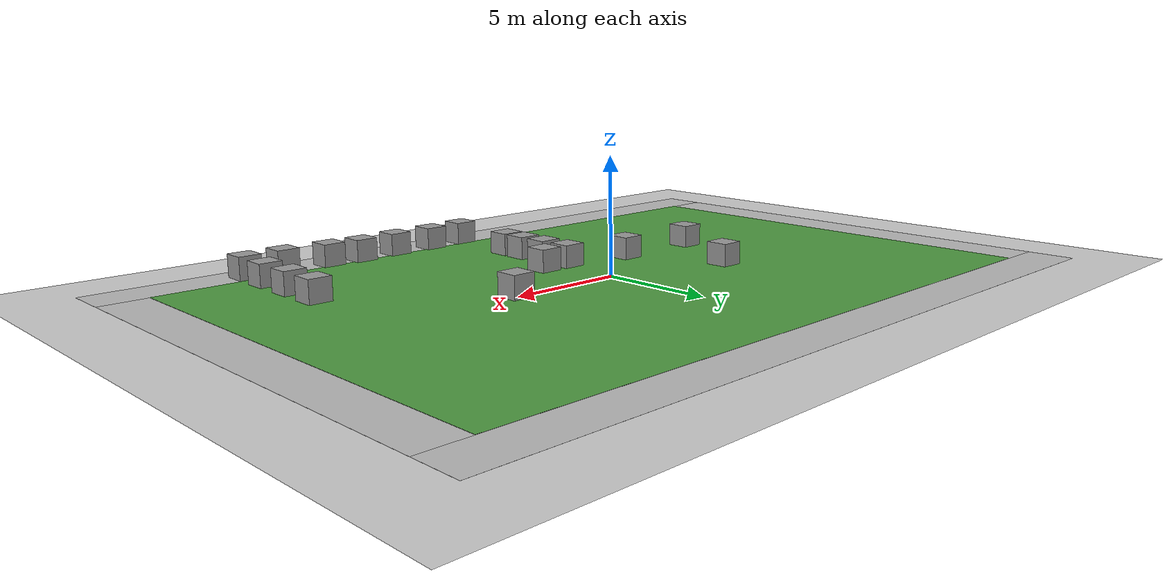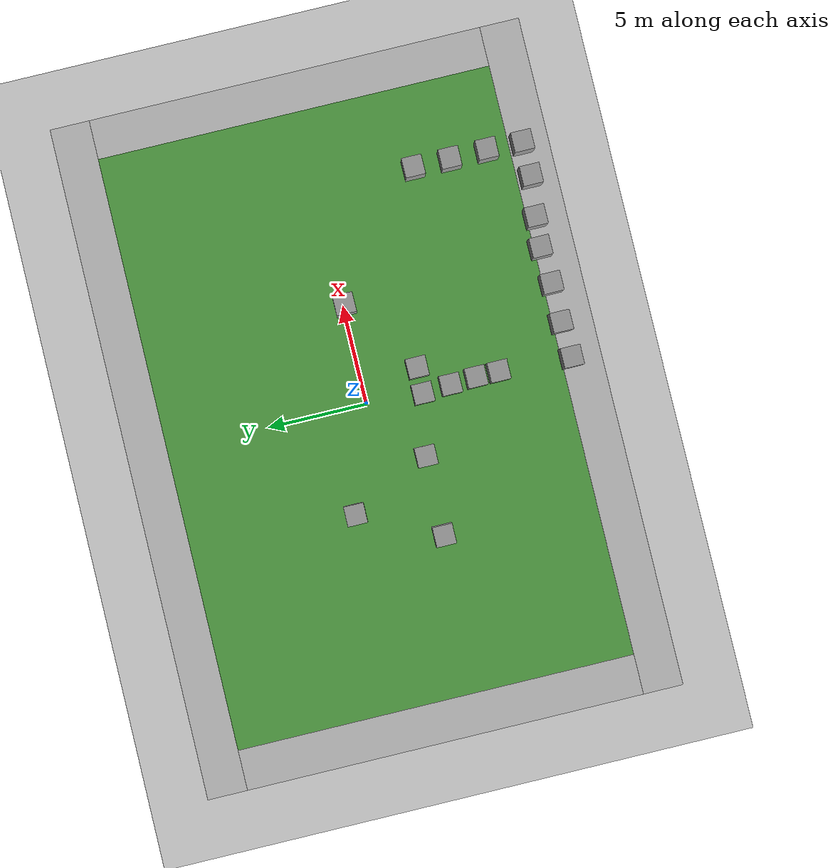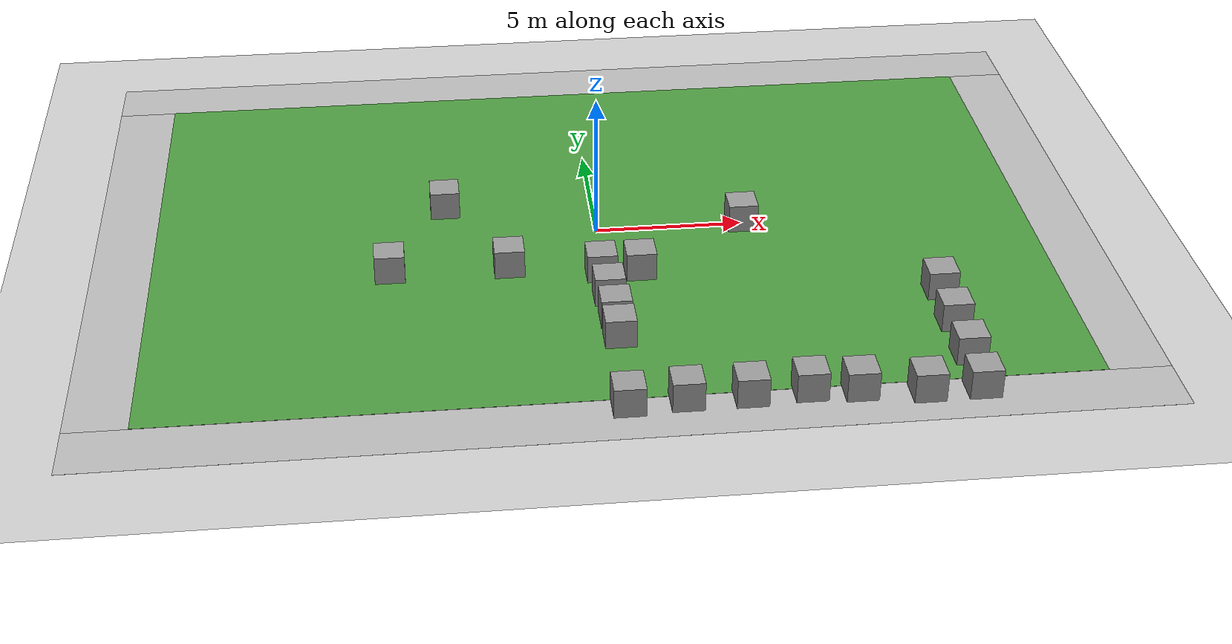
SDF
<sdf version="1.6">
 <world name="default">
  <plugin name="ardupilot_sitl_gazebo_plugin" filename="libardupilot_sitl_gazebo_plugin_rover.so">
   <UAV_MODEL>rover</UAV_MODEL>
  </plugin>
  <light name="sun" type="directional">
   <pose>0 0 10 0 -0 0</pose>
   <diffuse>0.8 0.8 0.8 1</diffuse>
   <specular>0.2 0.2 0.2 1</specular>
   <attenuation>
    <range>1000</range>
    <constant>0.9</constant>
    <linear>0.01</linear>
    <quadratic>0.001</quadratic>
   </attenuation>
   <direction>-0.5 0.1 -0.9</direction>
  </light>
  <model name="ground_plane">
   <static>1</static>
   <link name="link">
    <collision name="collision">
     <geometry><plane><normal>0 0 1</normal><size>100 100</size></plane></geometry>
     <surface><friction><ode><mu>100</mu><mu2>50</mu2></ode></friction></surface>
    </collision>
    <visual name="visual">
     <cast_shadows>0</cast_shadows>
     <geometry><plane><normal>0 0 1</normal><size>100 100</size></plane></geometry>
     <material>
      <script><uri>file://media/materials/scripts/gazebo.material</uri><name>Gazebo/Grey</name></script>
     </material>
    </visual>
   </link>
  </model>
  <gravity>0 0 -9.8</gravity>
  <magnetic_field>6e-06 2.3e-05 -4.2e-05</magnetic_field>
  <atmosphere type="adiabatic"/>
  <physics name="default_physics" default="0" type="ode">
   <max_step_size>0.001</max_step_size>
   <real_time_factor>1</real_time_factor>
   <real_time_update_rate>1000</real_time_update_rate>
  </physics>
  <scene><ambient>0.4 0.4 0.4 1</ambient><background>0.7 0.7 0.7 1</background><shadows>1</shadows></scene>
  <spherical_coordinates>
   <surface_model>EARTH_WGS84</surface_model>
   <latitude_deg>0</latitude_deg>
   <longitude_deg>0</longitude_deg>
   <elevation>0</elevation>
   <heading_deg>0</heading_deg>
  </spherical_coordinates>
  <model name="robocup_3d_field">
   <static>1</static>
   <link name="field">
    <pose>0 0 0.01 0 -0 0</pose>
    <collision name="collision">
     <geometry><plane><normal>0 0 1</normal><size>30 20</size></plane></geometry>
     <surface><friction><ode><mu>100</mu><mu2>50</mu2></ode></friction></surface>
    </collision>
    <visual name="base1">
     <pose>0 11 0.001 0 -0 0</pose>
     <cast_shadows>0</cast_shadows>
     <geometry><plane><normal>0 0 1</normal><size>34 2</size></plane></geometry>
     <material>
      <script>
       <uri>model://robocup_3Dsim_field/materials/scripts/</uri>
       <uri>model://robocup_3Dsim_field/materials/textures/</uri>
       <name>RoboCup/FieldBorder</name>
      </script>
     </material>
    </visual>
    <visual name="base2">
     <pose>0 -11 0.001 0 -0 0</pose>
     <cast_shadows>0</cast_shadows>
     <geometry><plane><normal>0 0 1</normal><size>34 2</size></plane></geometry>
     <material>
      <script>
       <uri>model://robocup_3Dsim_field/materials/scripts/</uri>
       <uri>model://robocup_3Dsim_field/materials/textures/</uri>
       <name>RoboCup/FieldBorder</name>
      </script>
     </material>
    </visual>
    <visual name="base3">
     <pose>16 0 0.001 0 -0 0</pose>
     <cast_shadows>0</cast_shadows>
     <geometry><plane><normal>0 0 1</normal><size>2 20</size></plane></geometry>
     <material>
      <script>
       <uri>model://robocup_3Dsim_field/materials/scripts/</uri>
       <uri>model://robocup_3Dsim_field/materials/textures/</uri>
       <name>RoboCup/FieldBorder</name>
      </script>
     </material>
    </visual>
    <visual name="base4">
     <pose>-16 0 0.001 0 -0 0</pose>
     <cast_shadows>0</cast_shadows>
     <geometry><plane><normal>0 0 1</normal><size>2 20</size></plane></geometry>
     <material>
      <script>
       <uri>model://robocup_3Dsim_field/materials/scripts/</uri>
       <uri>model://robocup_3Dsim_field/materials/textures/</uri>
       <name>RoboCup/FieldBorder</name>
      </script>
     </material>
    </visual>
    <visual name="carpet">
     <cast_shadows>0</cast_shadows>
     <geometry><plane><normal>0 0 1</normal><size>30 20</size></plane></geometry>
     <material>
      <script>
       <uri>model://robocup_3Dsim_field/materials/scripts/</uri>
       <uri>model://robocup_3Dsim_field/materials/textures/</uri>
       <name>RoboCup/Grass</name>
      </script>
     </material>
    </visual>
   </link>
   <pose>-0.031698 0.111229 0 0 -0 0</pose>
  </model>
  <model name="heavy_unit_box">
   <link name="link">
    <pose>0.094186 0.014985 0 0 -0 0</pose>
    <inertial>
     <mass>50</mass>
     <inertia>
      <ixx>0.166667</ixx>
      <ixy>0</ixy>
      <ixz>0</ixz>
      <iyy>0.166667</iyy>
      <iyz>0</iyz>
      <izz>0.166667</izz>
     </inertia>
    </inertial>
    <visual name="visual">
     <geometry><box><size>1 1 1</size></box></geometry>
     <material>
      <script><name>Gazebo/Grey</name><uri>file://media/materials/scripts/gazebo.material</uri></script>
      <ambient>0 0 0 1</ambient>
      <diffuse>0.7 0.7 0.7 1</diffuse>
      <specular>0.01 0.01 0.01 1</specular>
      <emissive>0 0 0 1</emissive>
      <shader type="vertex"><normal_map>__default__</normal_map></shader>
     </material>
    </visual>
    <collision name="collision">
     <geometry><box><size>1 1 1</size></box></geometry>
     <surface>
      <friction>
       <ode><mu>1</mu><mu2>1</mu2><fdir1>0 0 0</fdir1><slip1>0</slip1><slip2>0</slip2></ode>
       <torsional>
        <coefficient>1</coefficient>
        <patch_radius>0</patch_radius>
        <surface_radius>0</surface_radius>
        <use_patch_radius>1</use_patch_radius>
        <ode><slip>0</slip></ode>
       </torsional>
      </friction>
      <bounce><restitution_coefficient>0</restitution_coefficient><threshold>1e+06</threshold></bounce>
      <contact>
       <collide_without_contact>0</collide_without_contact>
       <collide_without_contact_bitmask>1</collide_without_contact_bitmask>
       <collide_bitmask>1</collide_bitmask>
       <ode>
        <soft_cfm>0</soft_cfm>
        <soft_erp>0.2</soft_erp>
        <kp>1e+13</kp>
        <kd>1</kd>
        <max_vel>0.01</max_vel>
        <min_depth>0</min_depth>
       </ode>
       <bullet>
        <split_impulse>1</split_impulse>
        <split_impulse_penetration_threshold>-0.01</split_impulse_penetration_threshold>
        <soft_cfm>0</soft_cfm>
        <soft_erp>0.2</soft_erp>
        <kp>1e+13</kp>
        <kd>1</kd>
       </bullet>
      </contact>
     </surface>
    </collision>
   </link>
   <static>0</static>
   <pose>4.91392 -0.111474 0.509995 4e-06 -1.2e-05 0.000169</pose>
  </model>
  <model name="heavy_unit_box_clone_13">
   <link name="link">
    <pose>0.094186 0.014985 0 0 -0 0</pose>
    <inertial>
     <mass>50</mass>
     <inertia>
      <ixx>0.166667</ixx>
      <ixy>0</ixy>
      <ixz>0</ixz>
      <iyy>0.166667</iyy>
      <iyz>0</iyz>
      <izz>0.166667</izz>
     </inertia>
    </inertial>
    <visual name="visual">
     <geometry><box><size>1 1 1</size></box></geometry>
     <material>
      <script><name>Gazebo/Grey</name><uri>file://media/materials/scripts/gazebo.material</uri></script>
      <ambient>0 0 0 1</ambient>
      <diffuse>0.7 0.7 0.7 1</diffuse>
      <specular>0.01 0.01 0.01 1</specular>
      <emissive>0 0 0 1</emissive>
      <shader type="vertex"><normal_map>__default__</normal_map></shader>
     </material>
    </visual>
    <collision name="collision">
     <geometry><box><size>1 1 1</size></box></geometry>
     <surface>
      <friction>
       <ode><mu>1</mu><mu2>1</mu2><fdir1>0 0 0</fdir1><slip1>0</slip1><slip2>0</slip2></ode>
       <torsional>
        <coefficient>1</coefficient>
        <patch_radius>0</patch_radius>
        <surface_radius>0</surface_radius>
        <use_patch_radius>1</use_patch_radius>
        <ode><slip>0</slip></ode>
       </torsional>
      </friction>
      <bounce><restitution_coefficient>0</restitution_coefficient><threshold>1e+06</threshold></bounce>
      <contact>
       <collide_without_contact>0</collide_without_contact>
       <collide_without_contact_bitmask>1</collide_without_contact_bitmask>
       <collide_bitmask>1</collide_bitmask>
       <ode>
        <soft_cfm>0</soft_cfm>
        <soft_erp>0.2</soft_erp>
        <kp>1e+13</kp>
        <kd>1</kd>
        <max_vel>0.01</max_vel>
        <min_depth>0</min_depth>
       </ode>
       <bullet>
        <split_impulse>1</split_impulse>
        <split_impulse_penetration_threshold>-0.01</split_impulse_penetration_threshold>
        <soft_cfm>0</soft_cfm>
        <soft_erp>0.2</soft_erp>
        <kp>1e+13</kp>
        <kd>1</kd>
       </bullet>
      </contact>
     </surface>
    </collision>
   </link>
   <static>0</static>
   <pose>1.06556 -2.84353 0.509995 4e-06 -1.2e-05 0.000169</pose>
  </model>
  <model name="heavy_unit_box_clone">
   <link name="link">
    <pose>0.094186 0.014985 0 0 -0 0</pose>
    <inertial>
     <mass>50</mass>
     <inertia>
      <ixx>0.166667</ixx>
      <ixy>0</ixy>
      <ixz>0</ixz>
      <iyy>0.166667</iyy>
      <iyz>0</iyz>
      <izz>0.166667</izz>
     </inertia>
    </inertial>
    <visual name="visual">
     <geometry><box><size>1 1 1</size></box></geometry>
     <material>
      <script><name>Gazebo/Grey</name><uri>file://media/materials/scripts/gazebo.material</uri></script>
      <ambient>0 0 0 1</ambient>
      <diffuse>0.7 0.7 0.7 1</diffuse>
      <specular>0.01 0.01 0.01 1</specular>
      <emissive>0 0 0 1</emissive>
      <shader type="vertex"><normal_map>__default__</normal_map></shader>
     </material>
    </visual>
    <collision name="collision">
     <geometry><box><size>1 1 1</size></box></geometry>
     <surface>
      <friction>
       <ode><mu>1</mu><mu2>1</mu2><fdir1>0 0 0</fdir1><slip1>0</slip1><slip2>0</slip2></ode>
       <torsional>
        <coefficient>1</coefficient>
        <patch_radius>0</patch_radius>
        <surface_radius>0</surface_radius>
        <use_patch_radius>1</use_patch_radius>
        <ode><slip>0</slip></ode>
       </torsional>
      </friction>
      <bounce><restitution_coefficient>0</restitution_coefficient><threshold>1e+06</threshold></bounce>
      <contact>
       <collide_without_contact>0</collide_without_contact>
       <collide_without_contact_bitmask>1</collide_without_contact_bitmask>
       <collide_bitmask>1</collide_bitmask>
       <ode>
        <soft_cfm>0</soft_cfm>
        <soft_erp>0.2</soft_erp>
        <kp>1e+13</kp>
        <kd>1</kd>
        <max_vel>0.01</max_vel>
        <min_depth>0</min_depth>
       </ode>
       <bullet>
        <split_impulse>1</split_impulse>
        <split_impulse_penetration_threshold>-0.01</split_impulse_penetration_threshold>
        <soft_cfm>0</soft_cfm>
        <soft_erp>0.2</soft_erp>
        <kp>1e+13</kp>
        <kd>1</kd>
       </bullet>
      </contact>
     </surface>
    </collision>
   </link>
   <static>0</static>
   <pose>-0.233036 -2.82226 0.509995 4e-06 -1.2e-05 0.000169</pose>
  </model>
  <model name="heavy_unit_box_clone_0">
   <link name="link">
    <pose>0.094186 0.014985 0 0 -0 0</pose>
    <inertial>
     <mass>50</mass>
     <inertia>
      <ixx>0.166667</ixx>
      <ixy>0</ixy>
      <ixz>0</ixz>
      <iyy>0.166667</iyy>
      <iyz>0</iyz>
      <izz>0.166667</izz>
     </inertia>
    </inertial>
    <visual name="visual">
     <geometry><box><size>1 1 1</size></box></geometry>
     <material>
      <script><name>Gazebo/Grey</name><uri>file://media/materials/scripts/gazebo.material</uri></script>
      <ambient>0 0 0 1</ambient>
      <diffuse>0.7 0.7 0.7 1</diffuse>
      <specular>0.01 0.01 0.01 1</specular>
      <emissive>0 0 0 1</emissive>
      <shader type="vertex"><normal_map>__default__</normal_map></shader>
     </material>
    </visual>
    <collision name="collision">
     <geometry><box><size>1 1 1</size></box></geometry>
     <surface>
      <friction>
       <ode><mu>1</mu><mu2>1</mu2><fdir1>0 0 0</fdir1><slip1>0</slip1><slip2>0</slip2></ode>
       <torsional>
        <coefficient>1</coefficient>
        <patch_radius>0</patch_radius>
        <surface_radius>0</surface_radius>
        <use_patch_radius>1</use_patch_radius>
        <ode><slip>0</slip></ode>
       </torsional>
      </friction>
      <bounce><restitution_coefficient>0</restitution_coefficient><threshold>1e+06</threshold></bounce>
      <contact>
       <collide_without_contact>0</collide_without_contact>
       <collide_without_contact_bitmask>1</collide_without_contact_bitmask>
       <collide_bitmask>1</collide_bitmask>
       <ode>
        <soft_cfm>0</soft_cfm>
        <soft_erp>0.2</soft_erp>
        <kp>1e+13</kp>
        <kd>1</kd>
        <max_vel>0.01</max_vel>
        <min_depth>0</min_depth>
       </ode>
       <bullet>
        <split_impulse>1</split_impulse>
        <split_impulse_penetration_threshold>-0.01</split_impulse_penetration_threshold>
        <soft_cfm>0</soft_cfm>
        <soft_erp>0.2</soft_erp>
        <kp>1e+13</kp>
        <kd>1</kd>
       </bullet>
      </contact>
     </surface>
    </collision>
   </link>
   <static>0</static>
   <pose>-0.126668 -4.23859 0.509995 4e-06 -1.2e-05 0.000169</pose>
  </model>
  <model name="heavy_unit_box_clone_1">
   <link name="link">
    <pose>0.094186 0.014985 0 0 -0 0</pose>
    <inertial>
     <mass>50</mass>
     <inertia>
      <ixx>0.166667</ixx>
      <ixy>0</ixy>
      <ixz>0</ixz>
      <iyy>0.166667</iyy>
      <iyz>0</iyz>
      <izz>0.166667</izz>
     </inertia>
    </inertial>
    <visual name="visual">
     <geometry><box><size>1 1 1</size></box></geometry>
     <material>
      <script><name>Gazebo/Grey</name><uri>file://media/materials/scripts/gazebo.material</uri></script>
      <ambient>0 0 0 1</ambient>
      <diffuse>0.7 0.7 0.7 1</diffuse>
      <specular>0.01 0.01 0.01 1</specular>
      <emissive>0 0 0 1</emissive>
      <shader type="vertex"><normal_map>__default__</normal_map></shader>
     </material>
    </visual>
    <collision name="collision">
     <geometry><box><size>1 1 1</size></box></geometry>
     <surface>
      <friction>
       <ode><mu>1</mu><mu2>1</mu2><fdir1>0 0 0</fdir1><slip1>0</slip1><slip2>0</slip2></ode>
       <torsional>
        <coefficient>1</coefficient>
        <patch_radius>0</patch_radius>
        <surface_radius>0</surface_radius>
        <use_patch_radius>1</use_patch_radius>
        <ode><slip>0</slip></ode>
       </torsional>
      </friction>
      <bounce><restitution_coefficient>0</restitution_coefficient><threshold>1e+06</threshold></bounce>
      <contact>
       <collide_without_contact>0</collide_without_contact>
       <collide_without_contact_bitmask>1</collide_without_contact_bitmask>
       <collide_bitmask>1</collide_bitmask>
       <ode>
        <soft_cfm>0</soft_cfm>
        <soft_erp>0.2</soft_erp>
        <kp>1e+13</kp>
        <kd>1</kd>
        <max_vel>0.01</max_vel>
        <min_depth>0</min_depth>
       </ode>
       <bullet>
        <split_impulse>1</split_impulse>
        <split_impulse_penetration_threshold>-0.01</split_impulse_penetration_threshold>
        <soft_cfm>0</soft_cfm>
        <soft_erp>0.2</soft_erp>
        <kp>1e+13</kp>
        <kd>1</kd>
       </bullet>
      </contact>
     </surface>
    </collision>
   </link>
   <static>0</static>
   <pose>-0.061368 -5.53773 0.509995 4e-06 -1.2e-05 0.000169</pose>
  </model>
  <model name="heavy_unit_box_clone_2">
   <link name="link">
    <pose>0.094186 0.014985 0 0 -0 0</pose>
    <inertial>
     <mass>50</mass>
     <inertia>
      <ixx>0.166667</ixx>
      <ixy>0</ixy>
      <ixz>0</ixz>
      <iyy>0.166667</iyy>
      <iyz>0</iyz>
      <izz>0.166667</izz>
     </inertia>
    </inertial>
    <visual name="visual">
     <geometry><box><size>1 1 1</size></box></geometry>
     <material>
      <script><name>Gazebo/Grey</name><uri>file://media/materials/scripts/gazebo.material</uri></script>
      <ambient>0 0 0 1</ambient>
      <diffuse>0.7 0.7 0.7 1</diffuse>
      <specular>0.01 0.01 0.01 1</specular>
      <emissive>0 0 0 1</emissive>
      <shader type="vertex"><normal_map>__default__</normal_map></shader>
     </material>
    </visual>
    <collision name="collision">
     <geometry><box><size>1 1 1</size></box></geometry>
     <surface>
      <friction>
       <ode><mu>1</mu><mu2>1</mu2><fdir1>0 0 0</fdir1><slip1>0</slip1><slip2>0</slip2></ode>
       <torsional>
        <coefficient>1</coefficient>
        <patch_radius>0</patch_radius>
        <surface_radius>0</surface_radius>
        <use_patch_radius>1</use_patch_radius>
        <ode><slip>0</slip></ode>
       </torsional>
      </friction>
      <bounce><restitution_coefficient>0</restitution_coefficient><threshold>1e+06</threshold></bounce>
      <contact>
       <collide_without_contact>0</collide_without_contact>
       <collide_without_contact_bitmask>1</collide_without_contact_bitmask>
       <collide_bitmask>1</collide_bitmask>
       <ode>
        <soft_cfm>0</soft_cfm>
        <soft_erp>0.2</soft_erp>
        <kp>1e+13</kp>
        <kd>1</kd>
        <max_vel>0.01</max_vel>
        <min_depth>0</min_depth>
       </ode>
       <bullet>
        <split_impulse>1</split_impulse>
        <split_impulse_penetration_threshold>-0.01</split_impulse_penetration_threshold>
        <soft_cfm>0</soft_cfm>
        <soft_erp>0.2</soft_erp>
        <kp>1e+13</kp>
        <kd>1</kd>
       </bullet>
      </contact>
     </surface>
    </collision>
   </link>
   <static>0</static>
   <pose>-0.05085 -6.68582 0.509995 4e-06 -1.2e-05 0.000169</pose>
  </model>
  <model name="heavy_unit_box_clone_3">
   <link name="link">
    <pose>0.094186 0.014985 0 0 -0 0</pose>
    <inertial>
     <mass>50</mass>
     <inertia>
      <ixx>0.166667</ixx>
      <ixy>0</ixy>
      <ixz>0</ixz>
      <iyy>0.166667</iyy>
      <iyz>0</iyz>
      <izz>0.166667</izz>
     </inertia>
    </inertial>
    <visual name="visual">
     <geometry><box><size>1 1 1</size></box></geometry>
     <material>
      <script><name>Gazebo/Grey</name><uri>file://media/materials/scripts/gazebo.material</uri></script>
      <ambient>0 0 0 1</ambient>
      <diffuse>0.7 0.7 0.7 1</diffuse>
      <specular>0.01 0.01 0.01 1</specular>
      <emissive>0 0 0 1</emissive>
      <shader type="vertex"><normal_map>__default__</normal_map></shader>
     </material>
    </visual>
    <collision name="collision">
     <geometry><box><size>1 1 1</size></box></geometry>
     <surface>
      <friction>
       <ode><mu>1</mu><mu2>1</mu2><fdir1>0 0 0</fdir1><slip1>0</slip1><slip2>0</slip2></ode>
       <torsional>
        <coefficient>1</coefficient>
        <patch_radius>0</patch_radius>
        <surface_radius>0</surface_radius>
        <use_patch_radius>1</use_patch_radius>
        <ode><slip>0</slip></ode>
       </torsional>
      </friction>
      <bounce><restitution_coefficient>0</restitution_coefficient><threshold>1e+06</threshold></bounce>
      <contact>
       <collide_without_contact>0</collide_without_contact>
       <collide_without_contact_bitmask>1</collide_without_contact_bitmask>
       <collide_bitmask>1</collide_bitmask>
       <ode>
        <soft_cfm>0</soft_cfm>
        <soft_erp>0.2</soft_erp>
        <kp>1e+13</kp>
        <kd>1</kd>
        <max_vel>0.01</max_vel>
        <min_depth>0</min_depth>
       </ode>
       <bullet>
        <split_impulse>1</split_impulse>
        <split_impulse_penetration_threshold>-0.01</split_impulse_penetration_threshold>
        <soft_cfm>0</soft_cfm>
        <soft_erp>0.2</soft_erp>
        <kp>1e+13</kp>
        <kd>1</kd>
       </bullet>
      </contact>
     </surface>
    </collision>
   </link>
   <static>0</static>
   <pose>-0.197615 -10.334 0.509995 4e-06 -1.2e-05 0.000169</pose>
  </model>
  <model name="heavy_unit_box_clone_4">
   <link name="link">
    <pose>0.094186 0.014985 0 0 -0 0</pose>
    <inertial>
     <mass>50</mass>
     <inertia>
      <ixx>0.166667</ixx>
      <ixy>0</ixy>
      <ixz>0</ixz>
      <iyy>0.166667</iyy>
      <iyz>0</iyz>
      <izz>0.166667</izz>
     </inertia>
    </inertial>
    <visual name="visual">
     <geometry><box><size>1 1 1</size></box></geometry>
     <material>
      <script><name>Gazebo/Grey</name><uri>file://media/materials/scripts/gazebo.material</uri></script>
      <ambient>0 0 0 1</ambient>
      <diffuse>0.7 0.7 0.7 1</diffuse>
      <specular>0.01 0.01 0.01 1</specular>
      <emissive>0 0 0 1</emissive>
      <shader type="vertex"><normal_map>__default__</normal_map></shader>
     </material>
    </visual>
    <collision name="collision">
     <geometry><box><size>1 1 1</size></box></geometry>
     <surface>
      <friction>
       <ode><mu>1</mu><mu2>1</mu2><fdir1>0 0 0</fdir1><slip1>0</slip1><slip2>0</slip2></ode>
       <torsional>
        <coefficient>1</coefficient>
        <patch_radius>0</patch_radius>
        <surface_radius>0</surface_radius>
        <use_patch_radius>1</use_patch_radius>
        <ode><slip>0</slip></ode>
       </torsional>
      </friction>
      <bounce><restitution_coefficient>0</restitution_coefficient><threshold>1e+06</threshold></bounce>
      <contact>
       <collide_without_contact>0</collide_without_contact>
       <collide_without_contact_bitmask>1</collide_without_contact_bitmask>
       <collide_bitmask>1</collide_bitmask>
       <ode>
        <soft_cfm>0</soft_cfm>
        <soft_erp>0.2</soft_erp>
        <kp>1e+13</kp>
        <kd>1</kd>
        <max_vel>0.01</max_vel>
        <min_depth>0</min_depth>
       </ode>
       <bullet>
        <split_impulse>1</split_impulse>
        <split_impulse_penetration_threshold>-0.01</split_impulse_penetration_threshold>
        <soft_cfm>0</soft_cfm>
        <soft_erp>0.2</soft_erp>
        <kp>1e+13</kp>
        <kd>1</kd>
       </bullet>
      </contact>
     </surface>
    </collision>
   </link>
   <static>0</static>
   <pose>1.59245 -10.2342 0.509995 4e-06 -1.2e-05 0.000169</pose>
  </model>
  <model name="heavy_unit_box_clone_5">
   <link name="link">
    <pose>0.094186 0.014985 0 0 -0 0</pose>
    <inertial>
     <mass>50</mass>
     <inertia>
      <ixx>0.166667</ixx>
      <ixy>0</ixy>
      <ixz>0</ixz>
      <iyy>0.166667</iyy>
      <iyz>0</iyz>
      <izz>0.166667</izz>
     </inertia>
    </inertial>
    <visual name="visual">
     <geometry><box><size>1 1 1</size></box></geometry>
     <material>
      <script><name>Gazebo/Grey</name><uri>file://media/materials/scripts/gazebo.material</uri></script>
      <ambient>0 0 0 1</ambient>
      <diffuse>0.7 0.7 0.7 1</diffuse>
      <specular>0.01 0.01 0.01 1</specular>
      <emissive>0 0 0 1</emissive>
      <shader type="vertex"><normal_map>__default__</normal_map></shader>
     </material>
    </visual>
    <collision name="collision">
     <geometry><box><size>1 1 1</size></box></geometry>
     <surface>
      <friction>
       <ode><mu>1</mu><mu2>1</mu2><fdir1>0 0 0</fdir1><slip1>0</slip1><slip2>0</slip2></ode>
       <torsional>
        <coefficient>1</coefficient>
        <patch_radius>0</patch_radius>
        <surface_radius>0</surface_radius>
        <use_patch_radius>1</use_patch_radius>
        <ode><slip>0</slip></ode>
       </torsional>
      </friction>
      <bounce><restitution_coefficient>0</restitution_coefficient><threshold>1e+06</threshold></bounce>
      <contact>
       <collide_without_contact>0</collide_without_contact>
       <collide_without_contact_bitmask>1</collide_without_contact_bitmask>
       <collide_bitmask>1</collide_bitmask>
       <ode>
        <soft_cfm>0</soft_cfm>
        <soft_erp>0.2</soft_erp>
        <kp>1e+13</kp>
        <kd>1</kd>
        <max_vel>0.01</max_vel>
        <min_depth>0</min_depth>
       </ode>
       <bullet>
        <split_impulse>1</split_impulse>
        <split_impulse_penetration_threshold>-0.01</split_impulse_penetration_threshold>
        <soft_cfm>0</soft_cfm>
        <soft_erp>0.2</soft_erp>
        <kp>1e+13</kp>
        <kd>1</kd>
       </bullet>
      </contact>
     </surface>
    </collision>
   </link>
   <static>0</static>
   <pose>3.5585 -10.2307 0.509995 4e-06 -1.2e-05 0.000169</pose>
  </model>
  <model name="heavy_unit_box_clone_6">
   <link name="link">
    <pose>0.094186 0.014985 0 0 -0 0</pose>
    <inertial>
     <mass>50</mass>
     <inertia>
      <ixx>0.166667</ixx>
      <ixy>0</ixy>
      <ixz>0</ixz>
      <iyy>0.166667</iyy>
      <iyz>0</iyz>
      <izz>0.166667</izz>
     </inertia>
    </inertial>
    <visual name="visual">
     <geometry><box><size>1 1 1</size></box></geometry>
     <material>
      <script><name>Gazebo/Grey</name><uri>file://media/materials/scripts/gazebo.material</uri></script>
      <ambient>0 0 0 1</ambient>
      <diffuse>0.7 0.7 0.7 1</diffuse>
      <specular>0.01 0.01 0.01 1</specular>
      <emissive>0 0 0 1</emissive>
      <shader type="vertex"><normal_map>__default__</normal_map></shader>
     </material>
    </visual>
    <collision name="collision">
     <geometry><box><size>1 1 1</size></box></geometry>
     <surface>
      <friction>
       <ode><mu>1</mu><mu2>1</mu2><fdir1>0 0 0</fdir1><slip1>0</slip1><slip2>0</slip2></ode>
       <torsional>
        <coefficient>1</coefficient>
        <patch_radius>0</patch_radius>
        <surface_radius>0</surface_radius>
        <use_patch_radius>1</use_patch_radius>
        <ode><slip>0</slip></ode>
       </torsional>
      </friction>
      <bounce><restitution_coefficient>0</restitution_coefficient><threshold>1e+06</threshold></bounce>
      <contact>
       <collide_without_contact>0</collide_without_contact>
       <collide_without_contact_bitmask>1</collide_without_contact_bitmask>
       <collide_bitmask>1</collide_bitmask>
       <ode>
        <soft_cfm>0</soft_cfm>
        <soft_erp>0.2</soft_erp>
        <kp>1e+13</kp>
        <kd>1</kd>
        <max_vel>0.01</max_vel>
        <min_depth>0</min_depth>
       </ode>
       <bullet>
        <split_impulse>1</split_impulse>
        <split_impulse_penetration_threshold>-0.01</split_impulse_penetration_threshold>
        <soft_cfm>0</soft_cfm>
        <soft_erp>0.2</soft_erp>
        <kp>1e+13</kp>
        <kd>1</kd>
       </bullet>
      </contact>
     </surface>
    </collision>
   </link>
   <static>0</static>
   <pose>5.40411 -10.1289 0.509995 4e-06 -1.2e-05 0.000169</pose>
  </model>
  <model name="heavy_unit_box_clone_7">
   <link name="link">
    <pose>0.094186 0.014985 0 0 -0 0</pose>
    <inertial>
     <mass>50</mass>
     <inertia>
      <ixx>0.166667</ixx>
      <ixy>0</ixy>
      <ixz>0</ixz>
      <iyy>0.166667</iyy>
      <iyz>0</iyz>
      <izz>0.166667</izz>
     </inertia>
    </inertial>
    <visual name="visual">
     <geometry><box><size>1 1 1</size></box></geometry>
     <material>
      <script><name>Gazebo/Grey</name><uri>file://media/materials/scripts/gazebo.material</uri></script>
      <ambient>0 0 0 1</ambient>
      <diffuse>0.7 0.7 0.7 1</diffuse>
      <specular>0.01 0.01 0.01 1</specular>
      <emissive>0 0 0 1</emissive>
      <shader type="vertex"><normal_map>__default__</normal_map></shader>
     </material>
    </visual>
    <collision name="collision">
     <geometry><box><size>1 1 1</size></box></geometry>
     <surface>
      <friction>
       <ode><mu>1</mu><mu2>1</mu2><fdir1>0 0 0</fdir1><slip1>0</slip1><slip2>0</slip2></ode>
       <torsional>
        <coefficient>1</coefficient>
        <patch_radius>0</patch_radius>
        <surface_radius>0</surface_radius>
        <use_patch_radius>1</use_patch_radius>
        <ode><slip>0</slip></ode>
       </torsional>
      </friction>
      <bounce><restitution_coefficient>0</restitution_coefficient><threshold>1e+06</threshold></bounce>
      <contact>
       <collide_without_contact>0</collide_without_contact>
       <collide_without_contact_bitmask>1</collide_without_contact_bitmask>
       <collide_bitmask>1</collide_bitmask>
       <ode>
        <soft_cfm>0</soft_cfm>
        <soft_erp>0.2</soft_erp>
        <kp>1e+13</kp>
        <kd>1</kd>
        <max_vel>0.01</max_vel>
        <min_depth>0</min_depth>
       </ode>
       <bullet>
        <split_impulse>1</split_impulse>
        <split_impulse_penetration_threshold>-0.01</split_impulse_penetration_threshold>
        <soft_cfm>0</soft_cfm>
        <soft_erp>0.2</soft_erp>
        <kp>1e+13</kp>
        <kd>1</kd>
       </bullet>
      </contact>
     </surface>
    </collision>
   </link>
   <static>0</static>
   <pose>6.9273 -10.2551 0.509995 4e-06 -1.2e-05 0.000169</pose>
  </model>
  <model name="heavy_unit_box_clone_8">
   <link name="link">
    <pose>0.094186 0.014985 0 0 -0 0</pose>
    <inertial>
     <mass>50</mass>
     <inertia>
      <ixx>0.166667</ixx>
      <ixy>0</ixy>
      <ixz>0</ixz>
      <iyy>0.166667</iyy>
      <iyz>0</iyz>
      <izz>0.166667</izz>
     </inertia>
    </inertial>
    <visual name="visual">
     <geometry><box><size>1 1 1</size></box></geometry>
     <material>
      <script><name>Gazebo/Grey</name><uri>file://media/materials/scripts/gazebo.material</uri></script>
      <ambient>0 0 0 1</ambient>
      <diffuse>0.7 0.7 0.7 1</diffuse>
      <specular>0.01 0.01 0.01 1</specular>
      <emissive>0 0 0 1</emissive>
      <shader type="vertex"><normal_map>__default__</normal_map></shader>
     </material>
    </visual>
    <collision name="collision">
     <geometry><box><size>1 1 1</size></box></geometry>
     <surface>
      <friction>
       <ode><mu>1</mu><mu2>1</mu2><fdir1>0 0 0</fdir1><slip1>0</slip1><slip2>0</slip2></ode>
       <torsional>
        <coefficient>1</coefficient>
        <patch_radius>0</patch_radius>
        <surface_radius>0</surface_radius>
        <use_patch_radius>1</use_patch_radius>
        <ode><slip>0</slip></ode>
       </torsional>
      </friction>
      <bounce><restitution_coefficient>0</restitution_coefficient><threshold>1e+06</threshold></bounce>
      <contact>
       <collide_without_contact>0</collide_without_contact>
       <collide_without_contact_bitmask>1</collide_without_contact_bitmask>
       <collide_bitmask>1</collide_bitmask>
       <ode>
        <soft_cfm>0</soft_cfm>
        <soft_erp>0.2</soft_erp>
        <kp>1e+13</kp>
        <kd>1</kd>
        <max_vel>0.01</max_vel>
        <min_depth>0</min_depth>
       </ode>
       <bullet>
        <split_impulse>1</split_impulse>
        <split_impulse_penetration_threshold>-0.01</split_impulse_penetration_threshold>
        <soft_cfm>0</soft_cfm>
        <soft_erp>0.2</soft_erp>
        <kp>1e+13</kp>
        <kd>1</kd>
       </bullet>
      </contact>
     </surface>
    </collision>
   </link>
   <static>0</static>
   <pose>8.95444 -10.5164 0.509995 4e-06 -1.2e-05 0.000169</pose>
  </model>
  <model name="heavy_unit_box_clone_9">
   <link name="link">
    <pose>0.094186 0.014985 0 0 -0 0</pose>
    <inertial>
     <mass>50</mass>
     <inertia>
      <ixx>0.166667</ixx>
      <ixy>0</ixy>
      <ixz>0</ixz>
      <iyy>0.166667</iyy>
      <iyz>0</iyz>
      <izz>0.166667</izz>
     </inertia>
    </inertial>
    <visual name="visual">
     <geometry><box><size>1 1 1</size></box></geometry>
     <material>
      <script><name>Gazebo/Grey</name><uri>file://media/materials/scripts/gazebo.material</uri></script>
      <ambient>0 0 0 1</ambient>
      <diffuse>0.7 0.7 0.7 1</diffuse>
      <specular>0.01 0.01 0.01 1</specular>
      <emissive>0 0 0 1</emissive>
      <shader type="vertex"><normal_map>__default__</normal_map></shader>
     </material>
    </visual>
    <collision name="collision">
     <geometry><box><size>1 1 1</size></box></geometry>
     <surface>
      <friction>
       <ode><mu>1</mu><mu2>1</mu2><fdir1>0 0 0</fdir1><slip1>0</slip1><slip2>0</slip2></ode>
       <torsional>
        <coefficient>1</coefficient>
        <patch_radius>0</patch_radius>
        <surface_radius>0</surface_radius>
        <use_patch_radius>1</use_patch_radius>
        <ode><slip>0</slip></ode>
       </torsional>
      </friction>
      <bounce><restitution_coefficient>0</restitution_coefficient><threshold>1e+06</threshold></bounce>
      <contact>
       <collide_without_contact>0</collide_without_contact>
       <collide_without_contact_bitmask>1</collide_without_contact_bitmask>
       <collide_bitmask>1</collide_bitmask>
       <ode>
        <soft_cfm>0</soft_cfm>
        <soft_erp>0.2</soft_erp>
        <kp>1e+13</kp>
        <kd>1</kd>
        <max_vel>0.01</max_vel>
        <min_depth>0</min_depth>
       </ode>
       <bullet>
        <split_impulse>1</split_impulse>
        <split_impulse_penetration_threshold>-0.01</split_impulse_penetration_threshold>
        <soft_cfm>0</soft_cfm>
        <soft_erp>0.2</soft_erp>
        <kp>1e+13</kp>
        <kd>1</kd>
       </bullet>
      </contact>
     </surface>
    </collision>
   </link>
   <static>0</static>
   <pose>10.6757 -10.5014 0.509995 4e-06 -1.2e-05 0.000169</pose>
  </model>
  <model name="heavy_unit_box_clone_10">
   <link name="link">
    <pose>0.094186 0.014985 0 0 -0 0</pose>
    <inertial>
     <mass>50</mass>
     <inertia>
      <ixx>0.166667</ixx>
      <ixy>0</ixy>
      <ixz>0</ixz>
      <iyy>0.166667</iyy>
      <iyz>0</iyz>
      <izz>0.166667</izz>
     </inertia>
    </inertial>
    <visual name="visual">
     <geometry><box><size>1 1 1</size></box></geometry>
     <material>
      <script><name>Gazebo/Grey</name><uri>file://media/materials/scripts/gazebo.material</uri></script>
      <ambient>0 0 0 1</ambient>
      <diffuse>0.7 0.7 0.7 1</diffuse>
      <specular>0.01 0.01 0.01 1</specular>
      <emissive>0 0 0 1</emissive>
      <shader type="vertex"><normal_map>__default__</normal_map></shader>
     </material>
    </visual>
    <collision name="collision">
     <geometry><box><size>1 1 1</size></box></geometry>
     <surface>
      <friction>
       <ode><mu>1</mu><mu2>1</mu2><fdir1>0 0 0</fdir1><slip1>0</slip1><slip2>0</slip2></ode>
       <torsional>
        <coefficient>1</coefficient>
        <patch_radius>0</patch_radius>
        <surface_radius>0</surface_radius>
        <use_patch_radius>1</use_patch_radius>
        <ode><slip>0</slip></ode>
       </torsional>
      </friction>
      <bounce><restitution_coefficient>0</restitution_coefficient><threshold>1e+06</threshold></bounce>
      <contact>
       <collide_without_contact>0</collide_without_contact>
       <collide_without_contact_bitmask>1</collide_without_contact_bitmask>
       <collide_bitmask>1</collide_bitmask>
       <ode>
        <soft_cfm>0</soft_cfm>
        <soft_erp>0.2</soft_erp>
        <kp>1e+13</kp>
        <kd>1</kd>
        <max_vel>0.01</max_vel>
        <min_depth>0</min_depth>
       </ode>
       <bullet>
        <split_impulse>1</split_impulse>
        <split_impulse_penetration_threshold>-0.01</split_impulse_penetration_threshold>
        <soft_cfm>0</soft_cfm>
        <soft_erp>0.2</soft_erp>
        <kp>1e+13</kp>
        <kd>1</kd>
       </bullet>
      </contact>
     </surface>
    </collision>
   </link>
   <static>0</static>
   <pose>10.7146 -8.70467 0.509995 4e-06 -1.2e-05 0.000169</pose>
  </model>
  <model name="heavy_unit_box_clone_11">
   <link name="link">
    <pose>0.094186 0.014985 0 0 -0 0</pose>
    <inertial>
     <mass>50</mass>
     <inertia>
      <ixx>0.166667</ixx>
      <ixy>0</ixy>
      <ixz>0</ixz>
      <iyy>0.166667</iyy>
      <iyz>0</iyz>
      <izz>0.166667</izz>
     </inertia>
    </inertial>
    <visual name="visual">
     <geometry><box><size>1 1 1</size></box></geometry>
     <material>
      <script><name>Gazebo/Grey</name><uri>file://media/materials/scripts/gazebo.material</uri></script>
      <ambient>0 0 0 1</ambient>
      <diffuse>0.7 0.7 0.7 1</diffuse>
      <specular>0.01 0.01 0.01 1</specular>
      <emissive>0 0 0 1</emissive>
      <shader type="vertex"><normal_map>__default__</normal_map></shader>
     </material>
    </visual>
    <collision name="collision">
     <geometry><box><size>1 1 1</size></box></geometry>
     <surface>
      <friction>
       <ode><mu>1</mu><mu2>1</mu2><fdir1>0 0 0</fdir1><slip1>0</slip1><slip2>0</slip2></ode>
       <torsional>
        <coefficient>1</coefficient>
        <patch_radius>0</patch_radius>
        <surface_radius>0</surface_radius>
        <use_patch_radius>1</use_patch_radius>
        <ode><slip>0</slip></ode>
       </torsional>
      </friction>
      <bounce><restitution_coefficient>0</restitution_coefficient><threshold>1e+06</threshold></bounce>
      <contact>
       <collide_without_contact>0</collide_without_contact>
       <collide_without_contact_bitmask>1</collide_without_contact_bitmask>
       <collide_bitmask>1</collide_bitmask>
       <ode>
        <soft_cfm>0</soft_cfm>
        <soft_erp>0.2</soft_erp>
        <kp>1e+13</kp>
        <kd>1</kd>
        <max_vel>0.01</max_vel>
        <min_depth>0</min_depth>
       </ode>
       <bullet>
        <split_impulse>1</split_impulse>
        <split_impulse_penetration_threshold>-0.01</split_impulse_penetration_threshold>
        <soft_cfm>0</soft_cfm>
        <soft_erp>0.2</soft_erp>
        <kp>1e+13</kp>
        <kd>1</kd>
       </bullet>
      </contact>
     </surface>
    </collision>
   </link>
   <static>0</static>
   <pose>10.7019 -6.83196 0.509995 4e-06 -1.2e-05 0.000169</pose>
  </model>
  <model name="heavy_unit_box_clone_12">
   <link name="link">
    <pose>0.094186 0.014985 0 0 -0 0</pose>
    <inertial>
     <mass>50</mass>
     <inertia>
      <ixx>0.166667</ixx>
      <ixy>0</ixy>
      <ixz>0</ixz>
      <iyy>0.166667</iyy>
      <iyz>0</iyz>
      <izz>0.166667</izz>
     </inertia>
    </inertial>
    <visual name="visual">
     <geometry><box><size>1 1 1</size></box></geometry>
     <material>
      <script><name>Gazebo/Grey</name><uri>file://media/materials/scripts/gazebo.material</uri></script>
      <ambient>0 0 0 1</ambient>
      <diffuse>0.7 0.7 0.7 1</diffuse>
      <specular>0.01 0.01 0.01 1</specular>
      <emissive>0 0 0 1</emissive>
      <shader type="vertex"><normal_map>__default__</normal_map></shader>
     </material>
    </visual>
    <collision name="collision">
     <geometry><box><size>1 1 1</size></box></geometry>
     <surface>
      <friction>
       <ode><mu>1</mu><mu2>1</mu2><fdir1>0 0 0</fdir1><slip1>0</slip1><slip2>0</slip2></ode>
       <torsional>
        <coefficient>1</coefficient>
        <patch_radius>0</patch_radius>
        <surface_radius>0</surface_radius>
        <use_patch_radius>1</use_patch_radius>
        <ode><slip>0</slip></ode>
       </torsional>
      </friction>
      <bounce><restitution_coefficient>0</restitution_coefficient><threshold>1e+06</threshold></bounce>
      <contact>
       <collide_without_contact>0</collide_without_contact>
       <collide_without_contact_bitmask>1</collide_without_contact_bitmask>
       <collide_bitmask>1</collide_bitmask>
       <ode>
        <soft_cfm>0</soft_cfm>
        <soft_erp>0.2</soft_erp>
        <kp>1e+13</kp>
        <kd>1</kd>
        <max_vel>0.01</max_vel>
        <min_depth>0</min_depth>
       </ode>
       <bullet>
        <split_impulse>1</split_impulse>
        <split_impulse_penetration_threshold>-0.01</split_impulse_penetration_threshold>
        <soft_cfm>0</soft_cfm>
        <soft_erp>0.2</soft_erp>
        <kp>1e+13</kp>
        <kd>1</kd>
       </bullet>
      </contact>
     </surface>
    </collision>
   </link>
   <static>0</static>
   <pose>10.7093 -4.98817 0.509995 4e-06 -1.2e-05 0.000169</pose>
  </model>
  <model name="heavy_unit_box_clone_14">
   <link name="link">
    <pose>0.094186 0.014985 0 0 -0 0</pose>
    <inertial>
     <mass>50</mass>
     <inertia>
      <ixx>0.166667</ixx>
      <ixy>0</ixy>
      <ixz>0</ixz>
      <iyy>0.166667</iyy>
      <iyz>0</iyz>
      <izz>0.166667</izz>
     </inertia>
    </inertial>
    <visual name="visual">
     <geometry><box><size>1 1 1</size></box></geometry>
     <material>
      <script><name>Gazebo/Grey</name><uri>file://media/materials/scripts/gazebo.material</uri></script>
      <ambient>0 0 0 1</ambient>
      <diffuse>0.7 0.7 0.7 1</diffuse>
      <specular>0.01 0.01 0.01 1</specular>
      <emissive>0 0 0 1</emissive>
      <shader type="vertex"><normal_map>__default__</normal_map></shader>
     </material>
    </visual>
    <collision name="collision">
     <geometry><box><size>1 1 1</size></box></geometry>
     <surface>
      <friction>
       <ode><mu>1</mu><mu2>1</mu2><fdir1>0 0 0</fdir1><slip1>0</slip1><slip2>0</slip2></ode>
       <torsional>
        <coefficient>1</coefficient>
        <patch_radius>0</patch_radius>
        <surface_radius>0</surface_radius>
        <use_patch_radius>1</use_patch_radius>
        <ode><slip>0</slip></ode>
       </torsional>
      </friction>
      <bounce><restitution_coefficient>0</restitution_coefficient><threshold>1e+06</threshold></bounce>
      <contact>
       <collide_without_contact>0</collide_without_contact>
       <collide_without_contact_bitmask>1</collide_without_contact_bitmask>
       <collide_bitmask>1</collide_bitmask>
       <ode>
        <soft_cfm>0</soft_cfm>
        <soft_erp>0.2</soft_erp>
        <kp>1e+13</kp>
        <kd>1</kd>
        <max_vel>0.01</max_vel>
        <min_depth>0</min_depth>
       </ode>
       <bullet>
        <split_impulse>1</split_impulse>
        <split_impulse_penetration_threshold>-0.01</split_impulse_penetration_threshold>
        <soft_cfm>0</soft_cfm>
        <soft_erp>0.2</soft_erp>
        <kp>1e+13</kp>
        <kd>1</kd>
       </bullet>
      </contact>
     </surface>
    </collision>
   </link>
   <static>0</static>
   <pose>-3.25936 -2.24903 0.509995 4e-06 -1.2e-05 0.000169</pose>
  </model>
  <model name="heavy_unit_box_clone_15">
   <link name="link">
    <pose>0.094186 0.014985 0 0 -0 0</pose>
    <inertial>
     <mass>50</mass>
     <inertia>
      <ixx>0.166667</ixx>
      <ixy>0</ixy>
      <ixz>0</ixz>
      <iyy>0.166667</iyy>
      <iyz>0</iyz>
      <izz>0.166667</izz>
     </inertia>
    </inertial>
    <visual name="visual">
     <geometry><box><size>1 1 1</size></box></geometry>
     <material>
      <script><name>Gazebo/Grey</name><uri>file://media/materials/scripts/gazebo.material</uri></script>
      <ambient>0 0 0 1</ambient>
      <diffuse>0.7 0.7 0.7 1</diffuse>
      <specular>0.01 0.01 0.01 1</specular>
      <emissive>0 0 0 1</emissive>
      <shader type="vertex"><normal_map>__default__</normal_map></shader>
     </material>
    </visual>
    <collision name="collision">
     <geometry><box><size>1 1 1</size></box></geometry>
     <surface>
      <friction>
       <ode><mu>1</mu><mu2>1</mu2><fdir1>0 0 0</fdir1><slip1>0</slip1><slip2>0</slip2></ode>
       <torsional>
        <coefficient>1</coefficient>
        <patch_radius>0</patch_radius>
        <surface_radius>0</surface_radius>
        <use_patch_radius>1</use_patch_radius>
        <ode><slip>0</slip></ode>
       </torsional>
      </friction>
      <bounce><restitution_coefficient>0</restitution_coefficient><threshold>1e+06</threshold></bounce>
      <contact>
       <collide_without_contact>0</collide_without_contact>
       <collide_without_contact_bitmask>1</collide_without_contact_bitmask>
       <collide_bitmask>1</collide_bitmask>
       <ode>
        <soft_cfm>0</soft_cfm>
        <soft_erp>0.2</soft_erp>
        <kp>1e+13</kp>
        <kd>1</kd>
        <max_vel>0.01</max_vel>
        <min_depth>0</min_depth>
       </ode>
       <bullet>
        <split_impulse>1</split_impulse>
        <split_impulse_penetration_threshold>-0.01</split_impulse_penetration_threshold>
        <soft_cfm>0</soft_cfm>
        <soft_erp>0.2</soft_erp>
        <kp>1e+13</kp>
        <kd>1</kd>
       </bullet>
      </contact>
     </surface>
    </collision>
   </link>
   <static>0</static>
   <pose>-7.21968 -2.19825 0.509995 4e-06 -1.2e-05 0.000169</pose>
  </model>
  <model name="heavy_unit_box_clone_16">
   <link name="link">
    <pose>0.094186 0.014985 0 0 -0 0</pose>
    <inertial>
     <mass>50</mass>
     <inertia>
      <ixx>0.166667</ixx>
      <ixy>0</ixy>
      <ixz>0</ixz>
      <iyy>0.166667</iyy>
      <iyz>0</iyz>
      <izz>0.166667</izz>
     </inertia>
    </inertial>
    <visual name="visual">
     <geometry><box><size>1 1 1</size></box></geometry>
     <material>
      <script><name>Gazebo/Grey</name><uri>file://media/materials/scripts/gazebo.material</uri></script>
      <ambient>0 0 0 1</ambient>
      <diffuse>0.7 0.7 0.7 1</diffuse>
      <specular>0.01 0.01 0.01 1</specular>
      <emissive>0 0 0 1</emissive>
      <shader type="vertex"><normal_map>__default__</normal_map></shader>
     </material>
    </visual>
    <collision name="collision">
     <geometry><box><size>1 1 1</size></box></geometry>
     <surface>
      <friction>
       <ode><mu>1</mu><mu2>1</mu2><fdir1>0 0 0</fdir1><slip1>0</slip1><slip2>0</slip2></ode>
       <torsional>
        <coefficient>1</coefficient>
        <patch_radius>0</patch_radius>
        <surface_radius>0</surface_radius>
        <use_patch_radius>1</use_patch_radius>
        <ode><slip>0</slip></ode>
       </torsional>
      </friction>
      <bounce><restitution_coefficient>0</restitution_coefficient><threshold>1e+06</threshold></bounce>
      <contact>
       <collide_without_contact>0</collide_without_contact>
       <collide_without_contact_bitmask>1</collide_without_contact_bitmask>
       <collide_bitmask>1</collide_bitmask>
       <ode>
        <soft_cfm>0</soft_cfm>
        <soft_erp>0.2</soft_erp>
        <kp>1e+13</kp>
        <kd>1</kd>
        <max_vel>0.01</max_vel>
        <min_depth>0</min_depth>
       </ode>
       <bullet>
        <split_impulse>1</split_impulse>
        <split_impulse_penetration_threshold>-0.01</split_impulse_penetration_threshold>
        <soft_cfm>0</soft_cfm>
        <soft_erp>0.2</soft_erp>
        <kp>1e+13</kp>
        <kd>1</kd>
       </bullet>
      </contact>
     </surface>
    </collision>
   </link>
   <static>0</static>
   <pose>-5.23122 1.7725 0.509995 4e-06 -1.2e-05 0.000169</pose>
  </model>
 </world>
</sdf>
